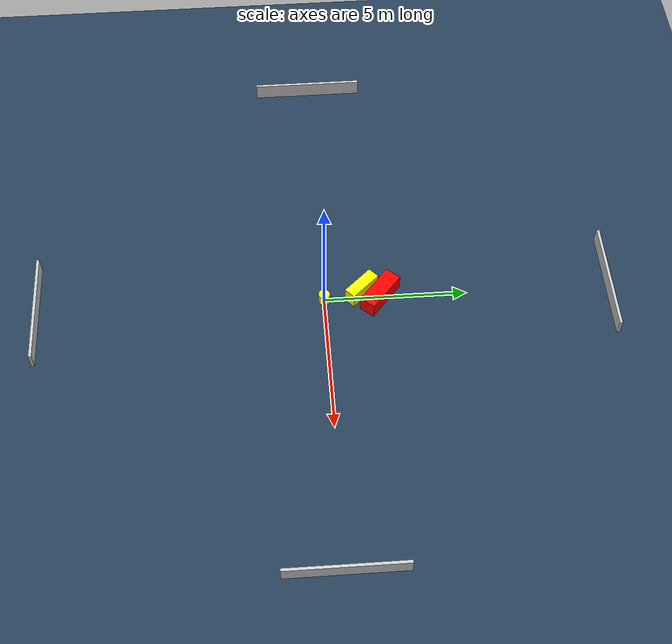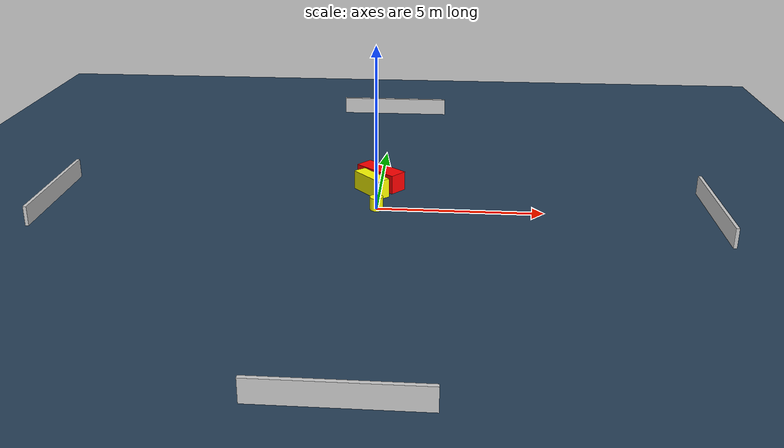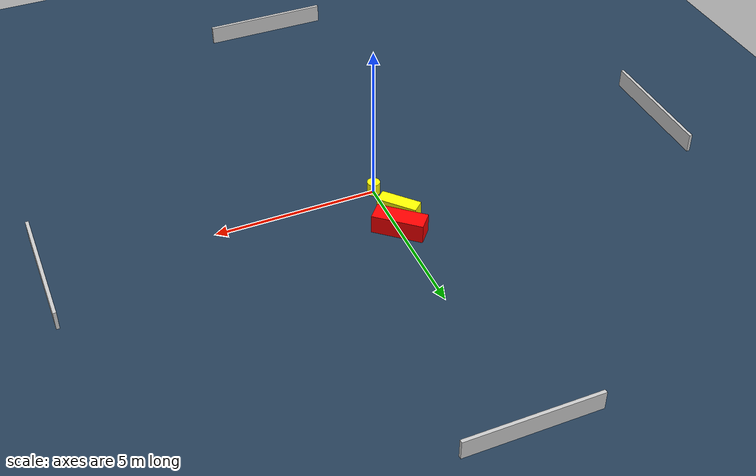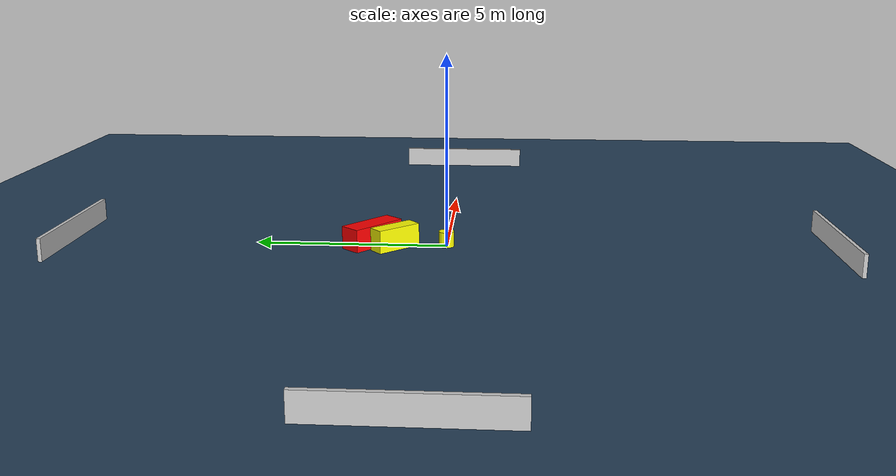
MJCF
<?xml version="1.0" ?>
<mujoco model="generated_environment">
  <option timestep="0.01" integrator="RK4" cone="elliptic"/>
  <default>
    <geom density="1"/>
  </default>
  <asset>
    <texture builtin="gradient" height="3072" name="skybox" rgb1="0.3 0.5 0.7" rgb2="0 0 0" type="skybox" width="512"/>
    <texture builtin="checker" height="300" name="groundplane" rgb1="0.2 0.3 0.4" rgb2="0.1 0.2 0.3" type="2d" width="300"/>
    <material name="groundplane" reflectance="0.2" texrepeat="5 5" texture="groundplane"/>
  </asset>
  <worldbody>
    <light dir="0 0 -1" directional="true" pos="0 0 1.5"/>
    <geom condim="3" friction="0.5 0.005 0.001" material="groundplane" name="floor" pos="0 0 0" size="0 0 0.05" type="plane"/>
    <body name="walls">
      <geom name="wall_1" condim="4" pos="-10.0 0.0 0.3" rgba="0.800000011920929 0.800000011920929 0.800000011920929 1.0" size="0.05 2.0 0.3" type="box"/>
      <geom name="wall_2" condim="4" pos="10.0 0.0 0.3" rgba="0.800000011920929 0.800000011920929 0.800000011920929 1.0" size="0.05 2.0 0.3" type="box"/>
      <geom name="wall_3" condim="4" pos="0.0 -10.0 0.3" rgba="0.800000011920929 0.800000011920929 0.800000011920929 1.0" size="2.0 0.05 0.3" type="box"/>
      <geom name="wall_4" condim="4" pos="0.0 10.0 0.3" rgba="0.800000011920929 0.800000011920929 0.800000011920929 1.0" size="2.0 0.05 0.3" type="box"/>
    </body>
    <body name="robot">
      <joint name="joint_x" type="slide" pos="0 0 0" axis="1 0 0"/>
      <joint name="joint_y" type="slide" pos="0 0 0" axis="0 1 0"/>
      <geom name="robot" type="cylinder" pos="0.0 0.0 0.2" size="0.2 0.2 0.0" mass="5.0" friction="1.0 0.005 0.0001" condim="4" rgba="1.0 1.0 0.0 1.0"/>
    </body>
    <body name="obstacle_1_movable">
      <geom name="obstacle_1_movable" condim="4" pos="-0.2516139248808022 1.324950062961952 0.3" euler="0 0 132.229588145541" friction="0.0 0.005 0.001" rgba="1.0 1.0 0.0 1.0" size="0.6207492756199269 0.21209086981527275 0.3" type="box" mass="0.1"/>
      <joint type="free"/>
    </body>
    <body name="obstacle_2_static">
      <geom name="obstacle_2_static" condim="4" pos="-0.003912503156791916 1.9518518079863827 0.3" euler="0 0 229.26831784940754" friction="0.0 0.005 0.001" rgba="1.0 0.0 0.0 1.0" size="0.29207475601158084 0.7792980084980246 0.3" type="box"/>
    </body>
  </worldbody>
  <actuator>
    <motor name="actuator_x" joint="joint_x" gear="1" ctrlrange="-1 1"/>
    <motor name="actuator_y" joint="joint_y" gear="1" ctrlrange="-1 1"/>
  </actuator>
</mujoco>
